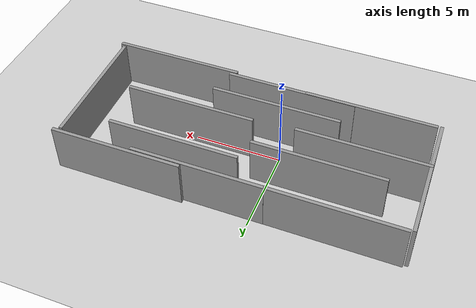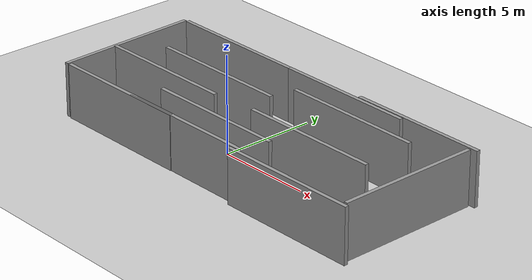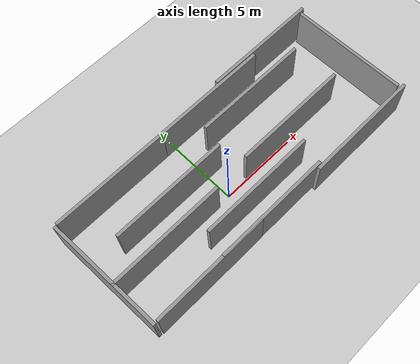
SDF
<sdf version="1.6">
 <world name="default">
  <light name="sun" type="directional">
   <pose>0 0 10 0 -0 0</pose>
   <diffuse>0.8 0.8 0.8 1</diffuse>
   <specular>0.2 0.2 0.2 1</specular>
   <attenuation>
    <range>1000</range>
    <constant>0.9</constant>
    <linear>0.01</linear>
    <quadratic>0.001</quadratic>
   </attenuation>
   <direction>-0.5 0.1 -0.9</direction>
  </light>
  <model name="ground_plane">
   <static>1</static>
   <link name="link">
    <collision name="collision">
     <geometry><plane><normal>0 0 1</normal><size>100 100</size></plane></geometry>
     <surface><friction><ode><mu>100</mu><mu2>50</mu2></ode></friction></surface>
    </collision>
    <visual name="visual">
     <cast_shadows>0</cast_shadows>
     <geometry><plane><normal>0 0 1</normal><size>100 100</size></plane></geometry>
     <material>
      <script><uri>file://media/materials/scripts/gazebo.material</uri><name>Gazebo/Grey</name></script>
     </material>
    </visual>
    <velocity_decay><linear>0</linear><angular>0</angular></velocity_decay>
   </link>
  </model>
  <physics name="default_physics" default="0" type="ode">
   <max_step_size>0.001</max_step_size>
   <real_time_factor>1</real_time_factor>
   <real_time_update_rate>1000</real_time_update_rate>
  </physics>
  <scene><ambient>0.4 0.4 0.4 1</ambient><background>0.7 0.7 0.7 1</background><shadows>1</shadows></scene>
  <spherical_coordinates>
   <surface_model>EARTH_WGS84</surface_model>
   <latitude_deg>0</latitude_deg>
   <longitude_deg>0</longitude_deg>
   <elevation>0</elevation>
   <heading_deg>0</heading_deg>
  </spherical_coordinates>
  <model name="grey_wall">
   <static>1</static>
   <link name="link">
    <pose>0 0 1.4 0 -0 0</pose>
    <collision name="collision"><geometry><box><size>7.5 0.2 2.8</size></box></geometry></collision>
    <visual name="visual">
     <cast_shadows>0</cast_shadows>
     <geometry><box><size>7.5 0.2 2.8</size></box></geometry>
     <material>
      <script>
       <uri>model://grey_wall/materials/scripts</uri>
       <uri>model://grey_wall/materials/textures</uri>
       <name>vrc/grey_wall</name>
      </script>
     </material>
    </visual>
    <velocity_decay><linear>0</linear><angular>0</angular></velocity_decay>
   </link>
   <pose>-4.45669 4.51369 0 0 -0 0</pose>
  </model>
  <model name="grey_wall_0">
   <static>1</static>
   <link name="link">
    <pose>0 0 1.4 0 -0 0</pose>
    <collision name="collision"><geometry><box><size>7.5 0.2 2.8</size></box></geometry></collision>
    <visual name="visual">
     <cast_shadows>0</cast_shadows>
     <geometry><box><size>7.5 0.2 2.8</size></box></geometry>
     <material>
      <script>
       <uri>model://grey_wall/materials/scripts</uri>
       <uri>model://grey_wall/materials/textures</uri>
       <name>vrc/grey_wall</name>
      </script>
     </material>
    </visual>
    <velocity_decay><linear>0</linear><angular>0</angular></velocity_decay>
   </link>
   <pose>-4.17438 -2.94975 0 0 -0 0</pose>
  </model>
  <model name="grey_wall_1">
   <static>1</static>
   <link name="link">
    <pose>0 0 1.4 0 -0 0</pose>
    <collision name="collision"><geometry><box><size>7.5 0.2 2.8</size></box></geometry></collision>
    <visual name="visual">
     <cast_shadows>0</cast_shadows>
     <geometry><box><size>7.5 0.2 2.8</size></box></geometry>
     <material>
      <script>
       <uri>model://grey_wall/materials/scripts</uri>
       <uri>model://grey_wall/materials/textures</uri>
       <name>vrc/grey_wall</name>
      </script>
     </material>
    </visual>
    <velocity_decay><linear>0</linear><angular>0</angular></velocity_decay>
   </link>
   <pose>-8.24091 0.730795 0 0 0 -1.53854</pose>
  </model>
  <model name="grey_wall_2">
   <static>1</static>
   <link name="link">
    <pose>0 0 1.4 0 -0 0</pose>
    <collision name="collision"><geometry><box><size>7.5 0.2 2.8</size></box></geometry></collision>
    <visual name="visual">
     <cast_shadows>0</cast_shadows>
     <geometry><box><size>7.5 0.2 2.8</size></box></geometry>
     <material>
      <script>
       <uri>model://grey_wall/materials/scripts</uri>
       <uri>model://grey_wall/materials/textures</uri>
       <name>vrc/grey_wall</name>
      </script>
     </material>
    </visual>
    <velocity_decay><linear>0</linear><angular>0</angular></velocity_decay>
   </link>
   <pose>-4.55904 0 0 0 -0 0</pose>
  </model>
  <model name="grey_wall_3">
   <static>1</static>
   <link name="link">
    <pose>0 0 1.4 0 -0 0</pose>
    <collision name="collision"><geometry><box><size>7.5 0.2 2.8</size></box></geometry></collision>
    <visual name="visual">
     <cast_shadows>0</cast_shadows>
     <geometry><box><size>7.5 0.2 2.8</size></box></geometry>
     <material>
      <script>
       <uri>model://grey_wall/materials/scripts</uri>
       <uri>model://grey_wall/materials/textures</uri>
       <name>vrc/grey_wall</name>
      </script>
     </material>
    </visual>
    <velocity_decay><linear>0</linear><angular>0</angular></velocity_decay>
   </link>
   <pose>7.55173 -3.15103 0.00212 0 0 -3.13944</pose>
  </model>
  <model name="grey_wall_4">
   <static>1</static>
   <link name="link">
    <pose>0 0 1.4 0 -0 0</pose>
    <collision name="collision"><geometry><box><size>7.5 0.2 2.8</size></box></geometry></collision>
    <visual name="visual">
     <cast_shadows>0</cast_shadows>
     <geometry><box><size>7.5 0.2 2.8</size></box></geometry>
     <material>
      <script>
       <uri>model://grey_wall/materials/scripts</uri>
       <uri>model://grey_wall/materials/textures</uri>
       <name>vrc/grey_wall</name>
      </script>
     </material>
    </visual>
    <velocity_decay><linear>0</linear><angular>0</angular></velocity_decay>
   </link>
   <pose>0.431481 -2.92293 0 0 -0 0</pose>
  </model>
  <model name="grey_wall_5">
   <static>1</static>
   <link name="link">
    <pose>0 0 1.4 0 -0 0</pose>
    <collision name="collision"><geometry><box><size>7.5 0.2 2.8</size></box></geometry></collision>
    <visual name="visual">
     <cast_shadows>0</cast_shadows>
     <geometry><box><size>7.5 0.2 2.8</size></box></geometry>
     <material>
      <script>
       <uri>model://grey_wall/materials/scripts</uri>
       <uri>model://grey_wall/materials/textures</uri>
       <name>vrc/grey_wall</name>
      </script>
     </material>
    </visual>
    <velocity_decay><linear>0</linear><angular>0</angular></velocity_decay>
   </link>
   <pose>-2.68167 1.75971 0 0 -0 0</pose>
  </model>
  <model name="grey_wall_6">
   <static>1</static>
   <link name="link">
    <pose>0 0 1.4 0 -0 0</pose>
    <collision name="collision"><geometry><box><size>7.5 0.2 2.8</size></box></geometry></collision>
    <visual name="visual">
     <cast_shadows>0</cast_shadows>
     <geometry><box><size>7.5 0.2 2.8</size></box></geometry>
     <material>
      <script>
       <uri>model://grey_wall/materials/scripts</uri>
       <uri>model://grey_wall/materials/textures</uri>
       <name>vrc/grey_wall</name>
      </script>
     </material>
    </visual>
    <velocity_decay><linear>0</linear><angular>0</angular></velocity_decay>
   </link>
   <pose>3 4.52028 0 0 -0 0</pose>
  </model>
  <gravity>0 0 -9.8</gravity>
  <magnetic_field>6e-06 2.3e-05 -4.2e-05</magnetic_field>
  <atmosphere type="adiabatic"/>
  <model name="grey_wall_3_clone">
   <static>1</static>
   <link name="link">
    <pose>0 0 1.4 0 -0 0</pose>
    <collision name="collision"><geometry><box><size>7.5 0.2 2.8</size></box></geometry></collision>
    <visual name="visual">
     <cast_shadows>0</cast_shadows>
     <geometry><box><size>7.5 0.2 2.8</size></box></geometry>
     <material>
      <script>
       <uri>model://grey_wall/materials/scripts</uri>
       <uri>model://grey_wall/materials/textures</uri>
       <name>vrc/grey_wall</name>
      </script>
     </material>
    </visual>
    <velocity_decay><linear>0</linear><angular>0</angular></velocity_decay>
   </link>
   <pose>7.54586 4.75836 0.00212 0 0 -3.13944</pose>
  </model>
  <model name="grey_wall_3_clone_0">
   <static>1</static>
   <link name="link">
    <pose>0 0 1.4 0 -0 0</pose>
    <collision name="collision"><geometry><box><size>7.5 0.2 2.8</size></box></geometry></collision>
    <visual name="visual">
     <cast_shadows>0</cast_shadows>
     <geometry><box><size>7.5 0.2 2.8</size></box></geometry>
     <material>
      <script>
       <uri>model://grey_wall/materials/scripts</uri>
       <uri>model://grey_wall/materials/textures</uri>
       <name>vrc/grey_wall</name>
      </script>
     </material>
    </visual>
    <velocity_decay><linear>0</linear><angular>0</angular></velocity_decay>
   </link>
   <pose>10.9569 0.813383 0.00212 0 0 -1.55947</pose>
  </model>
  <model name="grey_wall_5_clone">
   <static>1</static>
   <link name="link">
    <pose>0 0 1.4 0 -0 0</pose>
    <collision name="collision"><geometry><box><size>7.5 0.2 2.8</size></box></geometry></collision>
    <visual name="visual">
     <cast_shadows>0</cast_shadows>
     <geometry><box><size>7.5 0.2 2.8</size></box></geometry>
     <material>
      <script>
       <uri>model://grey_wall/materials/scripts</uri>
       <uri>model://grey_wall/materials/textures</uri>
       <name>vrc/grey_wall</name>
      </script>
     </material>
    </visual>
    <velocity_decay><linear>0</linear><angular>0</angular></velocity_decay>
   </link>
   <pose>0.822111 -1.42835 0 0 -0 0</pose>
  </model>
  <model name="grey_wall_5_clone_0">
   <static>1</static>
   <link name="link">
    <pose>0 0 1.4 0 -0 0</pose>
    <collision name="collision"><geometry><box><size>7.5 0.2 2.8</size></box></geometry></collision>
    <visual name="visual">
     <cast_shadows>0</cast_shadows>
     <geometry><box><size>7.5 0.2 2.8</size></box></geometry>
     <material>
      <script>
       <uri>model://grey_wall/materials/scripts</uri>
       <uri>model://grey_wall/materials/textures</uri>
       <name>vrc/grey_wall</name>
      </script>
     </material>
    </visual>
    <velocity_decay><linear>0</linear><angular>0</angular></velocity_decay>
   </link>
   <pose>5.27638 0.203805 0 0 -0 0</pose>
  </model>
  <model name="grey_wall_5_clone_1">
   <static>1</static>
   <link name="link">
    <pose>0 0 1.4 0 -0 0</pose>
    <collision name="collision"><geometry><box><size>7.5 0.2 2.8</size></box></geometry></collision>
    <visual name="visual">
     <cast_shadows>0</cast_shadows>
     <geometry><box><size>7.5 0.2 2.8</size></box></geometry>
     <material>
      <script>
       <uri>model://grey_wall/materials/scripts</uri>
       <uri>model://grey_wall/materials/textures</uri>
       <name>vrc/grey_wall</name>
      </script>
     </material>
    </visual>
    <velocity_decay><linear>0</linear><angular>0</angular></velocity_decay>
   </link>
   <pose>5.00102 3.08476 0 0 -0 0</pose>
  </model>
 </world>
</sdf>
